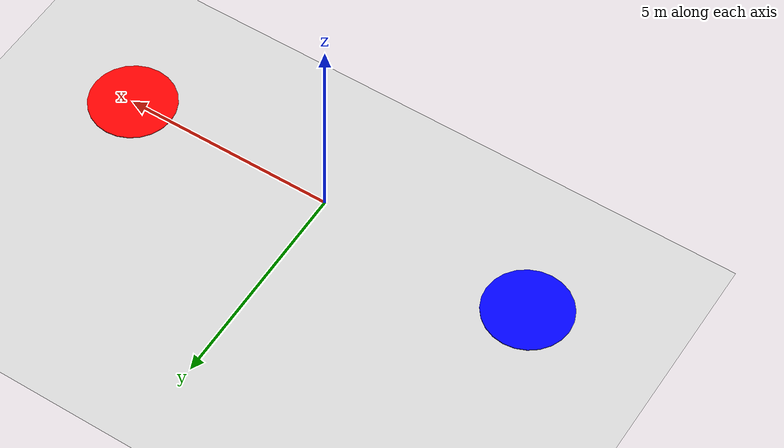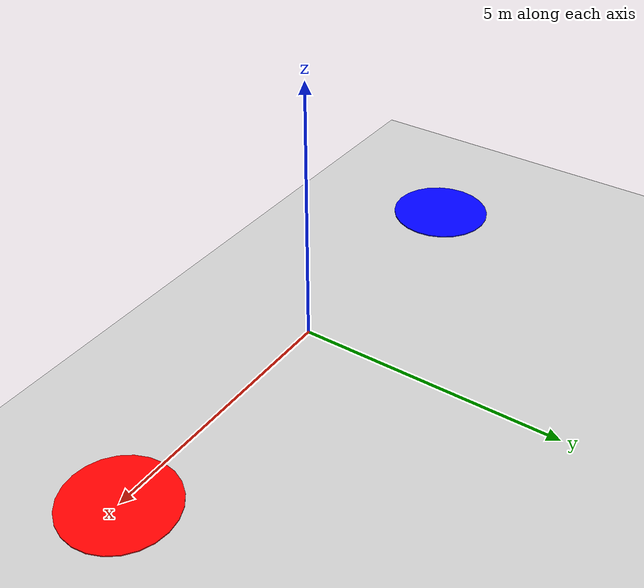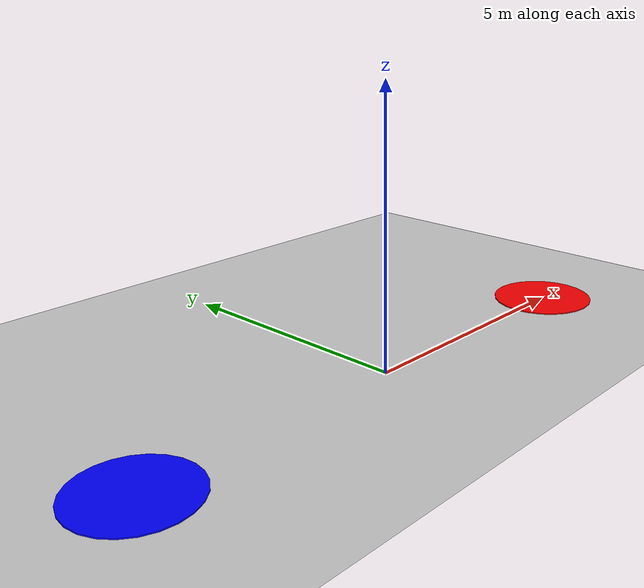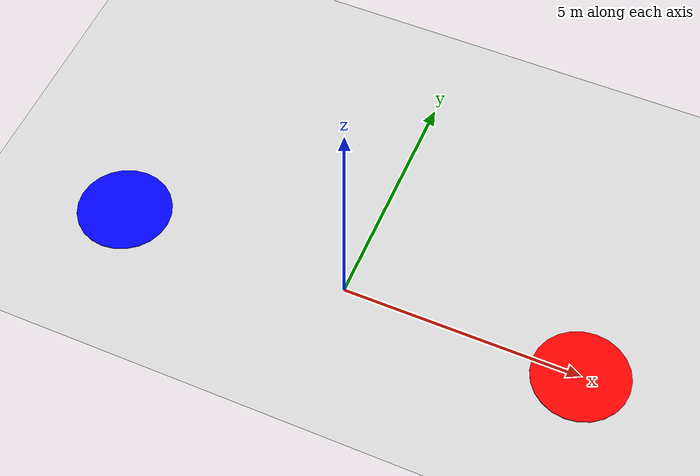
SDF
<?xml version="1.0" ?>
<sdf version="1.10">
    <world name="car_world">
        <physics name="1ms" type="ignored">
            <max_step_size>0.001</max_step_size>
            <real_time_factor>1.0</real_time_factor>
        </physics>
        <plugin filename="gz-sim-physics-system" name="gz::sim::systems::Physics"/>
        <plugin filename="gz-sim-user-commands-system" name="gz::sim::systems::UserCommands"/>
        <plugin filename="gz-sim-scene-broadcaster-system" name="gz::sim::systems::SceneBroadcaster"/>
        <light type="directional" name="directional_light"><cast_shadows>true</cast_shadows><pose>0 0 10 0 0 0</pose><diffuse>0.8 0.8 0.8 1</diffuse><specular>0.2 0.2 0.2 1</specular><direction>-0.5 0.1 -0.9</direction></light>
        <model name="ground_plane">
            <static>true</static>
            <link name="link">
                <collision name="collision"><geometry><plane><normal>0 0 1</normal></plane></geometry></collision>
                <visual name="visual"><geometry><plane><normal>0 0 1</normal><size>100 100</size></plane></geometry>
                <material><ambient>0.8 0.8 0.8 1</ambient><diffuse>0.8 0.8 0.8 1</diffuse></material></visual>
            </link>
        </model>
        <model name="landing_pad_red">
            <static>true</static>
            <pose>5 0 0.01 0 0 0</pose>
            <link name="link">
                <visual name="visual"><geometry><cylinder><radius>1.0</radius><length>0.02</length></cylinder></geometry>
                <material><ambient>1.0 0.0 0.0 1</ambient><diffuse>1.0 0.0 0.0 1</diffuse></material></visual>
                <collision name="collision"><geometry><cylinder><radius>1.0</radius><length>0.02</length></cylinder></geometry></collision>
            </link>
        </model>
        <model name="landing_pad_blue">
            <static>true</static>
            <pose>-5 0 0.01 0 0 0</pose>
            <link name="link">
                <visual name="visual"><geometry><cylinder><radius>1.0</radius><length>0.02</length></cylinder></geometry>
                <material><ambient>0.0 0.0 1.0 1</ambient><diffuse>0.0 0.0 1.0 1</diffuse></material></visual>
                <collision name="collision"><geometry><cylinder><radius>1.0</radius><length>0.02</length></cylinder></geometry></collision>
            </link>
        </model>
    </world>
</sdf>
